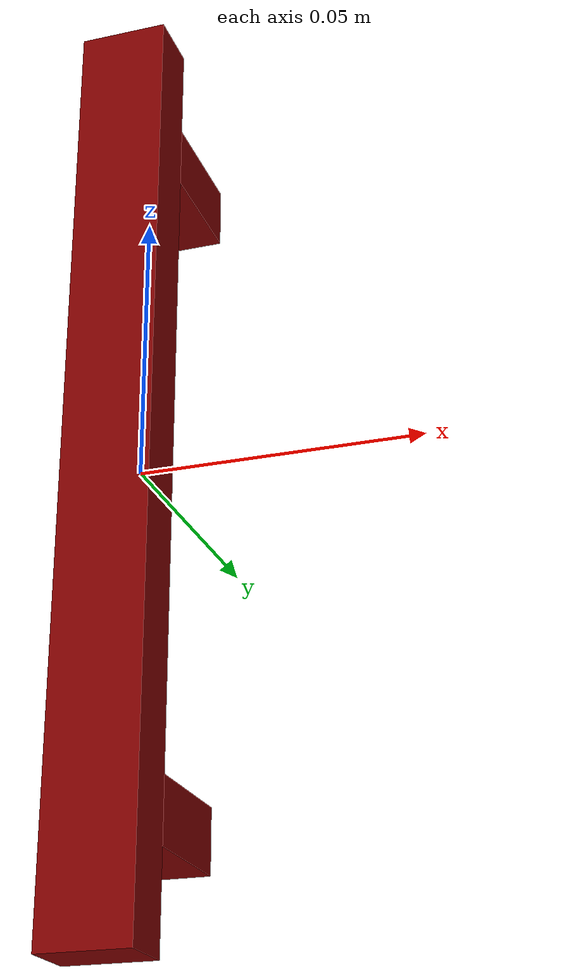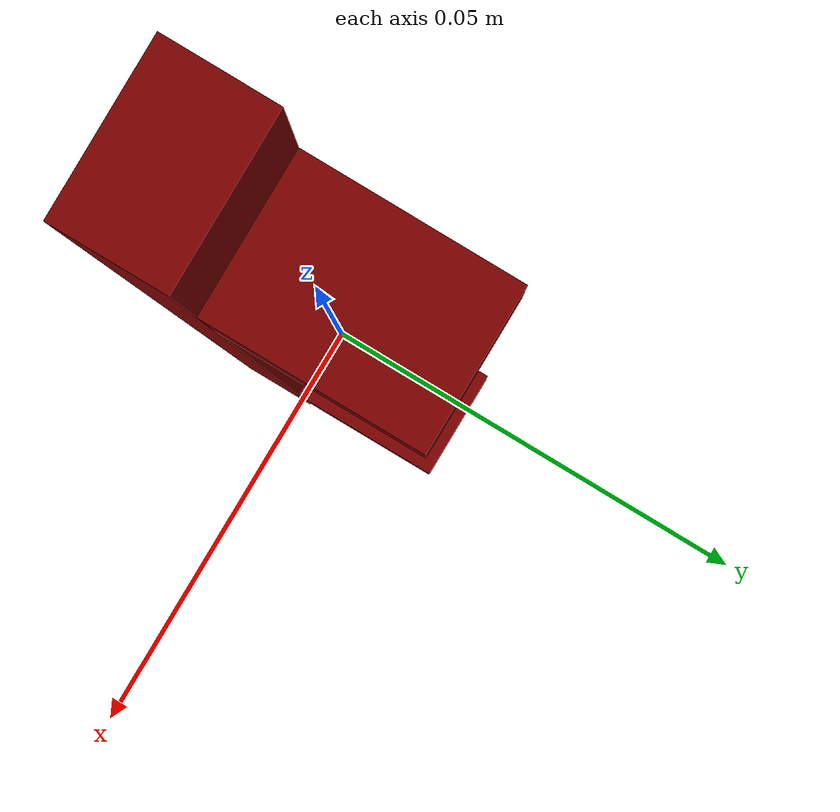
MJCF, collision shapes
<?xml version='1.0' encoding='UTF-8'?>
<mujoco model="model">
  <option timestep="0.002" gravity="0.0 0.0 -9.81"/>
  <compiler angle="radian"/>
  <asset>
    <mesh file="visuals/CabinetHandle009.obj" name="CabinetHandle009_vis"/>
    <texture file="visuals/T_BC001.png" name="tex" type="2d"/>
    <material name="mat" rgba="1 1 1 1.0" texture="tex" shininess="-1023.0" specular="0.3103448502657381"/>
  </asset>
  <default>
    <default class="visual">
      <geom conaffinity="0" contype="0" group="1" type="mesh"/>
    </default>
    <default class="collision">
      <geom group="0" rgba="0.5 0 0 0.5" density="1.0" solref="0.004 1" solimp="0.998 0.998 0.001"/>
    </default>
    <default class="spawn">
      <geom group="0" rgba="1 1 1 0.5" contype="0" conaffinity="0"/>
      <site group="0" rgba="1 1 1 0.5"/>
    </default>
    <default class="region">
      <geom group="1" conaffinity="0" contype="0" rgba="0 1 0 0" mass="0"/>
    </default>
  </default>
  <worldbody>
    <body>
      <body name="object">
        <geom mesh="CabinetHandle009_vis" type="mesh" solimp="0.998 0.998 0.001" solref="0.001 1" friction="0.95 0.3 0.1" class="visual" material="mat"/>
        <geom type="box" pos="0.0 -0.010422936640679836 0.0" size="0.007849609479308128 0.005206269212067127 0.0823536366224289" quat="1.0 0.0 0.0 0.0" class="collision"/>
        <geom type="box" pos="-1.3639054384044915e-17 0.005344139412045479 0.06005767360329628" size="0.007849608547985554 0.010579357855021954 0.005595744587481022" quat="1.0 0.0 0.0 0.0" class="collision"/>
        <geom type="box" pos="-1.3639054384044915e-17 0.005344139412045479 -0.05996280536055565" size="0.007849608547985554 0.010579358786344528 0.005595745053142309" quat="1.0 0.0 0.0 0.0" class="collision"/>
        <geom class="region" name="reg_main" type="box" pos="6.984919309616089e-10 0.0 0.0" size="0.008891771383583547 0.0167835241407156 0.08320212906599045"/>
      </body>
    </body>
  </worldbody>
  <actuator/>
</mujoco>
